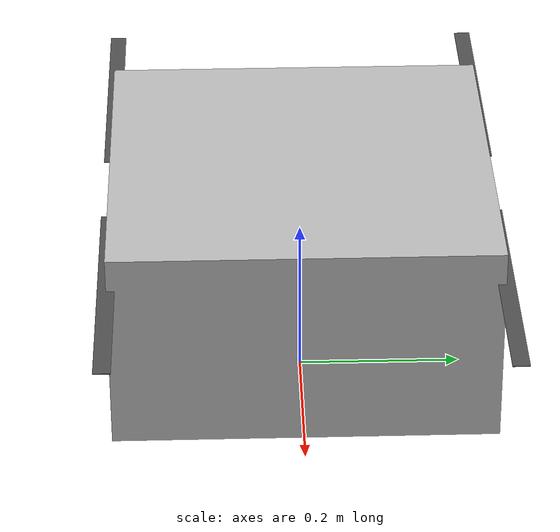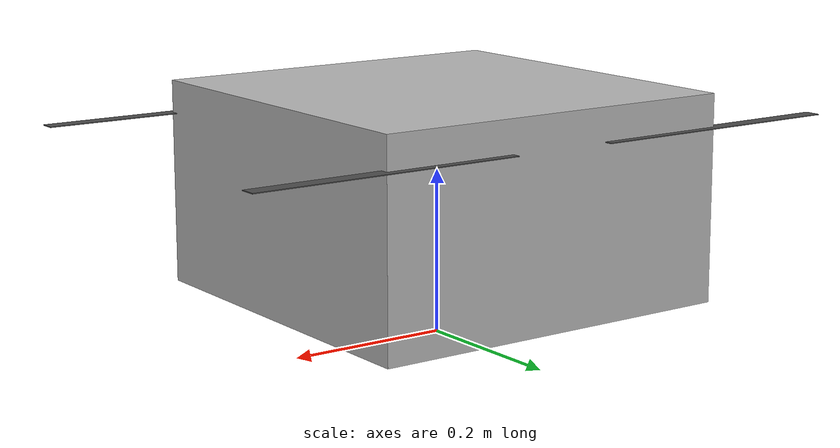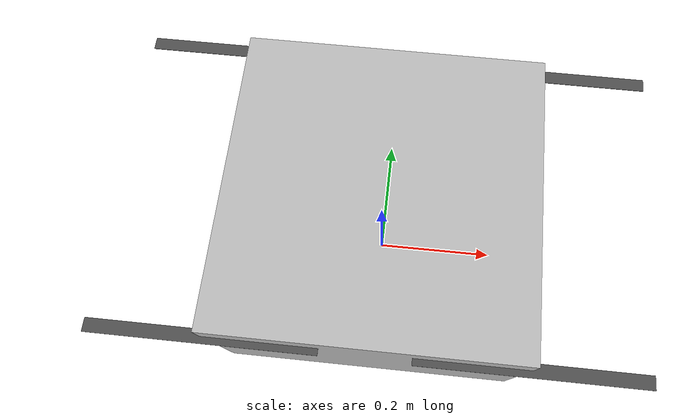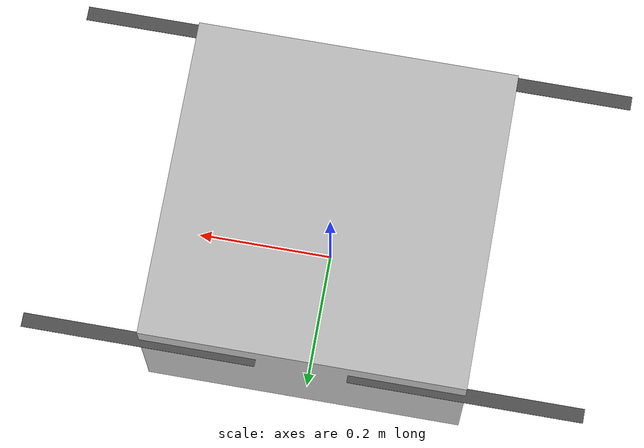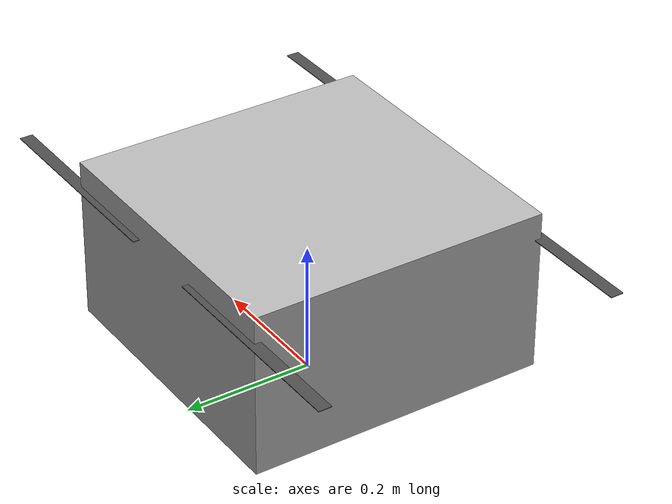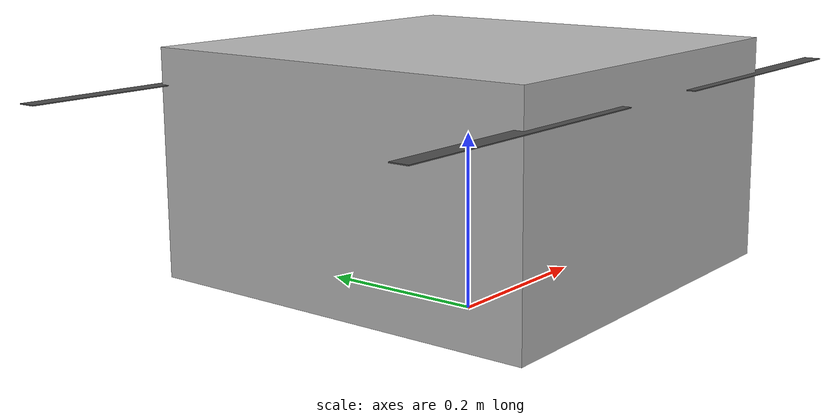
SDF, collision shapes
<?xml version='1.0'?>
<sdf version='1.5'>
  <model name='modified_m100_r200'>

    <include>
      <uri>model://modified_m100</uri>
    </include>

    <!--r200 RGB depth camera-->
    <include>
      <uri>model://modified_r200</uri>
      <pose>0.15 0 0.15 0 0 0</pose>
    </include>

    <joint name="modified_r200_joint" type="fixed">
      <parent>modified_m100::base_link</parent>
      <child>modified_r200::link</child>
    </joint>
  </model>
</sdf>

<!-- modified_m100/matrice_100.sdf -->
<sdf version="1.5">

  <model name="modified_m100">

    <pose>0 0 0.2 0 0 0</pose>

    <self_collide>false</self_collide>

    <static>false</static>

    <link name="base_link">
      <pose frame=''>0 0 0 0 -0 0</pose>
      <inertial>
        <pose frame=''>0 0 0 0 -0 0</pose>
        <mass>2.0</mass>
        <inertia>
          <ixx>0.0216666666667</ixx>
          <ixy>0</ixy>
          <ixz>0</ixz>
          <iyy>0.0216666666667</iyy>
          <iyz>0</iyz>
          <izz>0.04</izz>
        </inertia>
      </inertial>

      <gravity>true</gravity>
      <self_collide>false</self_collide>
      <velocity_decay/>

      <visual name="base_link_visual">
        <geometry>
          <mesh>
            <scale>1 1 1</scale>
            <uri>model://matrice_100/meshes/Matrice_100.dae</uri>
          </mesh>
        </geometry>
      </visual>

      <collision name="base_link_collision">
      	<pose frame=''>0 0 -0.025 0 0 0</pose>
        <geometry>
          <box>
            <size>0.4596194077712559 0.4596194077712559 0.25</size>
          </box>
        </geometry>
        <surface>
          <contact>
            <ode>
              <min_depth>0.001</min_depth>
              <max_vel>0</max_vel>
            </ode>
          </contact>
          <friction>
            <ode/>
          </friction>
        </surface>
      </collision>

    </link>

    <link name='/imu_link'>
      <pose frame=''>0 0 0 0 -0 0</pose>
      <inertial>
        <pose frame=''>0 0 0 0 -0 0</pose>
        <mass>0.015</mass>
        <inertia>
          <ixx>1e-05</ixx>
          <ixy>0</ixy>
          <ixz>0</ixz>
          <iyy>1e-05</iyy>
          <iyz>0</iyz>
          <izz>1e-05</izz>
        </inertia>
      </inertial>
    </link>
    <joint name='/imu_joint' type='revolute'>
      <child>/imu_link</child>
      <parent>base_link</parent>
      <axis>
        <xyz>1 0 0</xyz>
        <limit>
          <lower>0</lower>
          <upper>0</upper>
          <effort>0</effort>
          <velocity>0</velocity>
        </limit>
        <dynamics>
          <spring_reference>0</spring_reference>
          <spring_stiffness>0</spring_stiffness>
        </dynamics>
        <use_parent_model_frame>1</use_parent_model_frame>
      </axis>
    </joint>

    <plugin name='rosbag' filename='libgazebo_multirotor_base_plugin.so'>
      <robotNamespace/>
      <linkName>base_link</linkName>
      <rotorVelocitySlowdownSim>10</rotorVelocitySlowdownSim>
    </plugin>

    <!--Rotor 0 -->
    <link name="rotor_0">

      <gravity>true</gravity>
      <self_collide>false</self_collide>
      <velocity_decay/>

      <pose>0.22980970388562796 -0.22980970388562794 0.06 0 0 0</pose>
      <inertial>
          <mass>0.019</mass>
          <inertia>
            <ixx>6.34916666667e-07</ixx>
            <iyy>4.31078333333e-05</iyy>
            <izz>4.37395833333e-05</izz>
          </inertia>
        </inertial>
      <visual name="rotor_0_visual">
        <pose>0 0 0 0 0 0</pose>
        <geometry>
          <mesh>
            <scale>1 1 1</scale>
            <uri>model://matrice_100/meshes/dji_13455_prop_ccw.dae</uri>
          </mesh>
        </geometry>
        <material>
          <script>
            <name>Gazebo/DarkGrey</name>
            <uri>file://media/materials/scripts/gazebo.material</uri>
          </script>
        </material>
      </visual>

      <collision name="rotor_0_collision">
        <pose>0 0 0 0 0 0 </pose>
        <geometry>
          <box>
            <size>0.33 0.02 0.001</size>
          </box>
        </geometry>
        <surface>
          <contact>
            <ode>
              <min_depth>0.001</min_depth>
              <max_vel>0</max_vel>
            </ode>
          </contact>
          <friction>
            <ode/>
          </friction>
        </surface>
      </collision>

    </link>

    <joint name="rotor_0_joint" type="revolute">
      <parent>base_link</parent>
      <child>rotor_0</child>
      <axis>
        <xyz>0 0 1</xyz>
	<limit>
          <lower>-1e+16</lower>
          <upper>1e+16</upper>
        </limit>
        <dynamics>
          <spring_reference>0</spring_reference>
          <spring_stiffness>0</spring_stiffness>
        </dynamics>
        <use_parent_model_frame>1</use_parent_model_frame>
      </axis>
    </joint>

    <plugin name='rotor_0_motor_model' filename='libgazebo_motor_model.so'>
      <robotNamespace/>
      <jointName>rotor_0_joint</jointName>
      <linkName>rotor_0</linkName>
      <turningDirection>ccw</turningDirection>
      <timeConstantUp>0.0125</timeConstantUp>
      <timeConstantDown>0.025</timeConstantDown>
      <maxRotVelocity>1100</maxRotVelocity>
      <motorConstant>8.54858e-06</motorConstant>
      <momentConstant>0.06</momentConstant>
      <commandSubTopic>/gazebo/command/motor_speed</commandSubTopic>
      <motorNumber>0</motorNumber>
      <rotorDragCoefficient>0.000806428</rotorDragCoefficient>
      <rollingMomentCoefficient>1e-06</rollingMomentCoefficient>
      <motorSpeedPubTopic>/motor_speed/0</motorSpeedPubTopic>
      <rotorVelocitySlowdownSim>10</rotorVelocitySlowdownSim>
    </plugin>

    <!--Rotor 1 -->
    <link name="rotor_1">

      <gravity>true</gravity>
      <self_collide>false</self_collide>
      <velocity_decay/>

      <pose>-0.22980970388562794 0.22980970388562796 0.06 0 0 0</pose>
      <inertial>
          <mass>0.019</mass>
          <inertia>
            <ixx>6.34916666667e-07</ixx>
            <iyy>4.31078333333e-05</iyy>
            <izz>4.37395833333e-05</izz>
          </inertia>
        </inertial>
      <visual name="rotor_1_visual">
        <pose>0 0 0 0 0 0</pose>
        <geometry>
          <mesh>
            <scale>1 1 1</scale>
            <uri>model://matrice_100/meshes/dji_13455_prop_ccw.dae</uri>
          </mesh>
        </geometry>
        <material>
          <script>
            <name>Gazebo/DarkGrey</name>
            <uri>file://media/materials/scripts/gazebo.material</uri>
          </script>
        </material>
      </visual>

      <collision name="rotor_1_collision">
        <pose>0 0 0 0 0 0 </pose>
        <geometry>
          <box>
            <size>0.33 0.02 0.001</size>
          </box>
        </geometry>
        <surface>
          <contact>
            <ode>
              <min_depth>0.001</min_depth>
              <max_vel>0</max_vel>
            </ode>
          </contact>
          <friction>
            <ode/>
          </friction>
        </surface>
      </collision>

    </link>

    <joint name="rotor_1_joint" type="revolute">
      <parent>base_link</parent>
      <child>rotor_1</child>
      <axis>
        <xyz>0 0 1</xyz>
	<limit>
          <lower>-1e+16</lower>
          <upper>1e+16</upper>
        </limit>
        <dynamics>
          <spring_reference>0</spring_reference>
          <spring_stiffness>0</spring_stiffness>
        </dynamics>
        <use_parent_model_frame>1</use_parent_model_frame>
      </axis>
    </joint>

    <plugin name='rotor_1_motor_model' filename='libgazebo_motor_model.so'>
      <robotNamespace/>
      <jointName>rotor_1_joint</jointName>
      <linkName>rotor_1</linkName>
      <turningDirection>ccw</turningDirection>
      <timeConstantUp>0.0125</timeConstantUp>
      <timeConstantDown>0.025</timeConstantDown>
      <maxRotVelocity>1100</maxRotVelocity>
      <motorConstant>8.54858e-06</motorConstant>
      <momentConstant>0.06</momentConstant>
      <commandSubTopic>/gazebo/command/motor_speed</commandSubTopic>
      <motorNumber>1</motorNumber>
      <rotorDragCoefficient>0.000806428</rotorDragCoefficient>
      <rollingMomentCoefficient>1e-06</rollingMomentCoefficient>
      <motorSpeedPubTopic>/motor_speed/1</motorSpeedPubTopic>
      <rotorVelocitySlowdownSim>10</rotorVelocitySlowdownSim>
    </plugin>

    <!--Rotor 2 -->
    <link name="rotor_2">

      <gravity>true</gravity>
      <self_collide>false</self_collide>
      <velocity_decay/>

      <pose>0.22980970388562796 0.22980970388562794 0.06 0 0 0</pose>
      <inertial>
          <mass>0.019</mass>
          <inertia>
            <ixx>6.34916666667e-07</ixx>
            <iyy>4.31078333333e-05</iyy>
            <izz>4.37395833333e-05</izz>
          </inertia>
        </inertial>
      <visual name="rotor_2_visual">
        <pose>0 0 0 0 0 0</pose>
        <geometry>
          <mesh>
            <scale>1 1 1</scale>
            <uri>model://matrice_100/meshes/dji_13455_prop_cw.dae</uri>
          </mesh>
        </geometry>
        <material>
          <script>
            <name>Gazebo/DarkGrey</name>
            <uri>file://media/materials/scripts/gazebo.material</uri>
          </script>
        </material>
      </visual>

      <collision name="rotor_2_collision">
        <pose>0 0 0 0 0 0 </pose>
        <geometry>
          <box>
            <size>0.33 0.02 0.001</size>
          </box>
        </geometry>
        <surface>
          <contact>
            <ode>
              <min_depth>0.001</min_depth>
              <max_vel>0</max_vel>
            </ode>
          </contact>
          <friction>
            <ode/>
          </friction>
        </surface>
      </collision>

    </link>

    <joint name="rotor_2_joint" type="revolute">
      <parent>base_link</parent>
      <child>rotor_2</child>
      <axis>
        <xyz>0 0 1</xyz>
	<limit>
          <lower>-1e+16</lower>
          <upper>1e+16</upper>
        </limit>
        <dynamics>
          <spring_reference>0</spring_reference>
          <spring_stiffness>0</spring_stiffness>
        </dynamics>
        <use_parent_model_frame>1</use_parent_model_frame>
      </axis>
    </joint>

    <plugin name='rotor_2_motor_model' filename='libgazebo_motor_model.so'>
      <robotNamespace/>
      <jointName>rotor_2_joint</jointName>
      <linkName>rotor_2</linkName>
      <turningDirection>cw</turningDirection>
      <timeConstantUp>0.0125</timeConstantUp>
      <timeConstantDown>0.025</timeConstantDown>
      <maxRotVelocity>1100</maxRotVelocity>
      <motorConstant>8.54858e-06</motorConstant>
      <momentConstant>0.06</momentConstant>
      <commandSubTopic>/gazebo/command/motor_speed</commandSubTopic>
      <motorNumber>2</motorNumber>
      <rotorDragCoefficient>0.000806428</rotorDragCoefficient>
      <rollingMomentCoefficient>1e-06</rollingMomentCoefficient>
      <motorSpeedPubTopic>/motor_speed/2</motorSpeedPubTopic>
      <rotorVelocitySlowdownSim>10</rotorVelocitySlowdownSim>
    </plugin>

    <!--Rotor 3 -->
    <link name="rotor_3">

      <gravity>true</gravity>
      <self_collide>false</self_collide>
      <velocity_decay/>

      <pose>-0.22980970388562794 -0.22980970388562796 0.06 0 0 0</pose>
      <inertial>
          <mass>0.019</mass>
          <inertia>
            <ixx>6.34916666667e-07</ixx>
            <iyy>4.31078333333e-05</iyy>
            <izz>4.37395833333e-05</izz>
          </inertia>
        </inertial>
      <visual name="rotor_3_visual">
        <pose>0 0 0 0 0 0</pose>
        <geometry>
          <mesh>
            <scale>1 1 1</scale>
            <uri>model://matrice_100/meshes/dji_13455_prop_cw.dae</uri>
          </mesh>
        </geometry>
        <material>
          <script>
            <name>Gazebo/DarkGrey</name>
            <uri>file://media/materials/scripts/gazebo.material</uri>
          </script>
        </material>
      </visual>

      <collision name="rotor_3_collision">
        <pose>0 0 0 0 0 0 </pose>
        <geometry>
          <box>
            <size>0.33 0.02 0.001</size>
          </box>
        </geometry>
        <surface>
          <contact>
            <ode>
              <min_depth>0.001</min_depth>
              <max_vel>0</max_vel>
            </ode>
          </contact>
          <friction>
            <ode/>
          </friction>
        </surface>
      </collision>

    </link>

    <joint name="rotor_3_joint" type="revolute">
      <parent>base_link</parent>
      <child>rotor_3</child>
      <axis>
        <xyz>0 0 1</xyz>
	<limit>
          <lower>-1e+16</lower>
          <upper>1e+16</upper>
        </limit>
        <dynamics>
          <spring_reference>0</spring_reference>
          <spring_stiffness>0</spring_stiffness>
        </dynamics>
        <use_parent_model_frame>1</use_parent_model_frame>
      </axis>
    </joint>

    <plugin name='rotor_3_motor_model' filename='libgazebo_motor_model.so'>
      <robotNamespace/>
      <jointName>rotor_3_joint</jointName>
      <linkName>rotor_3</linkName>
      <turningDirection>cw</turningDirection>
      <timeConstantUp>0.0125</timeConstantUp>
      <timeConstantDown>0.025</timeConstantDown>
      <maxRotVelocity>1100</maxRotVelocity>
      <motorConstant>8.54858e-06</motorConstant>
      <momentConstant>0.06</momentConstant>
      <commandSubTopic>/gazebo/command/motor_speed</commandSubTopic>
      <motorNumber>3</motorNumber>
      <rotorDragCoefficient>0.000806428</rotorDragCoefficient>
      <rollingMomentCoefficient>1e-06</rollingMomentCoefficient>
      <motorSpeedPubTopic>/motor_speed/3</motorSpeedPubTopic>
      <rotorVelocitySlowdownSim>10</rotorVelocitySlowdownSim>
    </plugin>

    <!--Pixhawk autopilot-->

    <!--3DR GPS and Magnetometer-->

    <!--This is what plugin should look like if using standard sensors-->

    <plugin name='gps_plugin' filename='libgazebo_gps_plugin.so'>
      <robotNamespace/>
      <gpsNoise>1</gpsNoise>
    </plugin>
    <plugin name='magnetometer_plugin' filename='libgazebo_magnetometer_plugin.so'>
      <robotNamespace/>
      <pubRate>20</pubRate>
      <noiseDensity>0.0004</noiseDensity>
      <randomWalk>6.4e-06</randomWalk>
      <biasCorrelationTime>600</biasCorrelationTime>
      <magTopic>/mag</magTopic>
    </plugin>
    <plugin name='barometer_plugin' filename='libgazebo_barometer_plugin.so'>
      <robotNamespace/>
      <pubRate>10</pubRate>
      <baroTopic>/baro</baroTopic>
    </plugin>

    <plugin name='mavlink_interface' filename='libgazebo_mavlink_interface.so'>
      <robotNamespace/>
      <imuSubTopic>/imu</imuSubTopic>
      <gpsSubTopic>/gps</gpsSubTopic>
      <magSubTopic>/mag</magSubTopic>
      <baroSubTopic>/baro</baroSubTopic>
      <mavlink_addr>INADDR_ANY</mavlink_addr>
      <mavlink_udp_port>14560</mavlink_udp_port>
      <mavlink_tcp_port>4560</mavlink_tcp_port>
      <serialEnabled>false</serialEnabled>
      <serialDevice>/dev/ttyACM0</serialDevice>
      <baudRate>921600</baudRate>
      <qgc_addr>INADDR_ANY</qgc_addr>
      <qgc_udp_port>14550</qgc_udp_port>
      <hil_mode>false</hil_mode>
      <hil_state_level>false</hil_state_level>
      <vehicle_is_tailsitter>0</vehicle_is_tailsitter>
      <send_vision_estimation>1</send_vision_estimation>
      <send_odometry>0</send_odometry>
      <opticalFlowSubTopic>/px4flow/link/opticalFlow</opticalFlowSubTopic>
      <lidarSubTopic>/sf10a/link/lidar</lidarSubTopic>
      <enable_lockstep>true</enable_lockstep>
      <use_tcp>true</use_tcp>
      <motorSpeedCommandPubTopic>/gazebo/command/motor_speed</motorSpeedCommandPubTopic>
<control_channels>
        <channel name='rotor1'>
          <input_index>0</input_index>
          <input_offset>0</input_offset>
          <input_scaling>1000</input_scaling>
          <zero_position_disarmed>0</zero_position_disarmed>
          <zero_position_armed>100</zero_position_armed>
          <joint_control_type>velocity</joint_control_type>
        </channel>
        <channel name='rotor2'>
          <input_index>1</input_index>
          <input_offset>0</input_offset>
          <input_scaling>1000</input_scaling>
          <zero_position_disarmed>0</zero_position_disarmed>
          <zero_position_armed>100</zero_position_armed>
          <joint_control_type>velocity</joint_control_type>
        </channel>
        <channel name='rotor3'>
          <input_index>2</input_index>
          <input_offset>0</input_offset>
          <input_scaling>1000</input_scaling>
          <zero_position_disarmed>0</zero_position_disarmed>
          <zero_position_armed>100</zero_position_armed>
          <joint_control_type>velocity</joint_control_type>
        </channel>
        <channel name='rotor4'>
          <input_index>3</input_index>
          <input_offset>0</input_offset>
          <input_scaling>1000</input_scaling>
          <zero_position_disarmed>0</zero_position_disarmed>
          <zero_position_armed>100</zero_position_armed>
          <joint_control_type>velocity</joint_control_type>
        </channel>
        <channel name='rotor5'>
          <input_index>4</input_index>
          <input_offset>1</input_offset>
          <input_scaling>324.6</input_scaling>
          <zero_position_disarmed>0</zero_position_disarmed>
          <zero_position_armed>0</zero_position_armed>
          <joint_control_type>velocity</joint_control_type>
          <joint_control_pid>
            <p>0.1</p>
            <i>0</i>
            <d>0</d>
            <iMax>0.0</iMax>
            <iMin>0.0</iMin>
            <cmdMax>2</cmdMax>
            <cmdMin>-2</cmdMin>
          </joint_control_pid>
          <joint_name>zephyr_delta_wing::propeller_joint</joint_name>
        </channel>
        <channel name='rotor6'>
          <input_index>5</input_index>
          <input_offset>0</input_offset>
          <input_scaling>0.524</input_scaling>
          <zero_position_disarmed>0</zero_position_disarmed>
          <zero_position_armed>0</zero_position_armed>
          <joint_control_type>position</joint_control_type>
          <joint_name>zephyr_delta_wing::flap_left_joint</joint_name>
          <joint_control_pid>
            <p>10.0</p>
            <i>0</i>
            <d>0</d>
            <iMax>0</iMax>
            <iMin>0</iMin>
            <cmdMax>20</cmdMax>
            <cmdMin>-20</cmdMin>
          </joint_control_pid>
        </channel>
        <channel name='rotor7'>
          <input_index>6</input_index>
          <input_offset>0</input_offset>
          <input_scaling>0.524</input_scaling>
          <zero_position_disarmed>0</zero_position_disarmed>
          <zero_position_armed>0</zero_position_armed>
          <joint_control_type>position</joint_control_type>
          <joint_name>zephyr_delta_wing::flap_right_joint</joint_name>
          <joint_control_pid>
            <p>10.0</p>
            <i>0</i>
            <d>0</d>
            <iMax>0</iMax>
            <iMin>0</iMin>
            <cmdMax>20</cmdMax>
            <cmdMin>-20</cmdMin>
          </joint_control_pid>
        </channel>
        <channel name='rotor8'>
          <input_index>7</input_index>
          <input_offset>0</input_offset>
          <input_scaling>0.524</input_scaling>
          <zero_position_disarmed>0</zero_position_disarmed>
          <zero_position_armed>0</zero_position_armed>
          <joint_control_type>position</joint_control_type>
        </channel>
      </control_channels>
    </plugin>

    <plugin name='gazebo_imu_plugin' filename='libgazebo_imu_plugin.so'>
      <robotNamespace/>
      <linkName>/imu_link</linkName>
      <imuTopic>/imu</imuTopic>
      <gyroscopeNoiseDensity>0.0003394</gyroscopeNoiseDensity>
      <gyroscopeRandomWalk>3.8785e-05</gyroscopeRandomWalk>
      <gyroscopeBiasCorrelationTime>1000.0</gyroscopeBiasCorrelationTime>
      <gyroscopeTurnOnBiasSigma>0.0087</gyroscopeTurnOnBiasSigma>
      <accelerometerNoiseDensity>0.004</accelerometerNoiseDensity>
      <accelerometerRandomWalk>0.006</accelerometerRandomWalk>
      <accelerometerBiasCorrelationTime>300.0</accelerometerBiasCorrelationTime>
      <accelerometerTurnOnBiasSigma>0.196</accelerometerTurnOnBiasSigma>
    </plugin>

  </model>

</sdf>

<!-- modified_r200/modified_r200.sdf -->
<sdf version="1.5">

	<model name="modified_r200">

		<link name="link">

			<inertial>
				<mass>0.05</mass>
				<inertia>
					<ixx>4.16666666667e-06</ixx>
					<iyy>5.20833333333e-07</iyy>
					<izz>3.85416666667e-06</izz>
				</inertia>
			</inertial>

			<visual name="visual">
				<geometry>
					<box>
						<size>0.005 0.03 0.01</size>
					</box>
				</geometry>
			</visual>

			<collision name="collision">
				<geometry>
					<box>
						<size>0.005 0.03 0.01</size>
					</box>
				</geometry>
			</collision>

			<sensor type="depth" name="modified_r200_sensor">
				<always_on>true</always_on>
				<update_rate>30.0</update_rate>
				<visualize>true</visualize>
				<camera name="head">
					<horizontal_fov>1.3962634</horizontal_fov>
					<image>
						<width>640</width>
						<height>480</height>
						<format>R8G8B8</format>
					</image>
					<clip>
						<near>0.02</near>
						<far>300</far>
					</clip>
					<depth_camera>
						<output>1</output>
					</depth_camera>
					<noise>
						<type>gaussian</type>
						<!-- Noise is sampled independently per pixel on each frame.
						That pixel's noise value is added to each of its color
						channels, which at that point lie in the range [0,1]. -->
						<mean>0.0</mean>
						<stddev>0.007</stddev>
					</noise>
					<pose frame='cam_link'>0 0 0 0 0 0</pose>
				</camera>

				<plugin name="modified_r200_controller" filename="libgazebo_ros_openni_kinect.so">
					<baseline>0.2</baseline>
					<alwaysOn>true</alwaysOn>
					<updateRate>1.0</updateRate>
					<cameraName>modified_r200_ir</cameraName>
					<imageTopicName>/r200/depth/image_raw</imageTopicName>
					<cameraInfoTopicName>/r200/depth/camera_info</cameraInfoTopicName>
					<depthImageTopicName>/r200/depth/image_raw</depthImageTopicName>
					<depthImageInfoTopicName>/r200/depth/camera_info</depthImageInfoTopicName>
					<pointCloudTopicName>/r200/depth/points</pointCloudTopicName>
					<frameName>link</frameName>
					<pointCloudCutoff>0.5</pointCloudCutoff>
					<distortionK1>0.00000001</distortionK1>
					<distortionK2>0.00000001</distortionK2>
					<distortionK3>0.00000001</distortionK3>
					<distortionT1>0.00000001</distortionT1>
					<distortionT2>0.00000001</distortionT2>
					<CxPrime>0</CxPrime>
					<Cx>0</Cx>
					<Cy>0</Cy>
					<focalLength>0</focalLength>
					<hackBaseline>0</hackBaseline>
				</plugin>
			</sensor>
		</link>
	</model>

</sdf>
